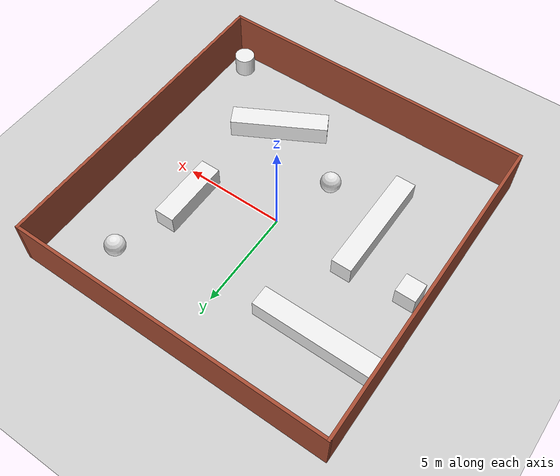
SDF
<sdf version="1.6">
 <world name="default">
  <light name="sun" type="directional">
   <pose>0 0 10 0 -0 0</pose>
   <diffuse>0.8 0.8 0.8 1</diffuse>
   <specular>0.2 0.2 0.2 1</specular>
   <attenuation>
    <range>1000</range>
    <constant>0.9</constant>
    <linear>0.01</linear>
    <quadratic>0.001</quadratic>
   </attenuation>
   <direction>-0.5 0.1 -0.9</direction>
   <spot><inner_angle>0</inner_angle><outer_angle>0</outer_angle><falloff>0</falloff></spot>
  </light>
  <model name="ground_plane">
   <static>1</static>
   <link name="link">
    <collision name="collision">
     <geometry><plane><normal>0 0 1</normal><size>100 100</size></plane></geometry>
     <surface>
      <contact><collide_bitmask>65535</collide_bitmask></contact>
      <friction><ode><mu>100</mu><mu2>50</mu2></ode></friction>
     </surface>
    </collision>
    <visual name="visual">
     <cast_shadows>0</cast_shadows>
     <geometry><plane><normal>0 0 1</normal><size>100 100</size></plane></geometry>
     <material>
      <script><uri>file://media/materials/scripts/gazebo.material</uri><name>Gazebo/Grey</name></script>
     </material>
    </visual>
   </link>
  </model>
  <gravity>0 0 -9.8</gravity>
  <magnetic_field>6e-06 2.3e-05 -4.2e-05</magnetic_field>
  <atmosphere type="adiabatic"/>
  <physics type="ode">
   <max_step_size>0.001</max_step_size>
   <real_time_factor>1</real_time_factor>
   <real_time_update_rate>1000</real_time_update_rate>
  </physics>
  <scene><ambient>0.4 0.4 0.4 1</ambient><background>0.7 0.7 0.7 1</background><shadows>1</shadows></scene>
  <spherical_coordinates>
   <surface_model>EARTH_WGS84</surface_model>
   <latitude_deg>0</latitude_deg>
   <longitude_deg>0</longitude_deg>
   <elevation>0</elevation>
   <heading_deg>0</heading_deg>
  </spherical_coordinates>
  <model name="simple">
   <link name="Wall_21">
    <collision name="Wall_21_Collision">
     <geometry><box><size>16 0.15 2.5</size></box></geometry>
     <pose>0 0 1.25 0 -0 0</pose>
    </collision>
    <visual name="Wall_21_Visual">
     <pose>0 0 1.25 0 -0 0</pose>
     <geometry><box><size>16 0.15 2.5</size></box></geometry>
     <material>
      <script><uri>file://media/materials/scripts/gazebo.material</uri><name>Gazebo/Bricks</name></script>
      <ambient>1 1 1 1</ambient>
     </material>
     <meta><layer>0</layer></meta>
    </visual>
    <pose>0 -7.925 0 0 -0 0</pose>
   </link>
   <link name="Wall_23">
    <collision name="Wall_23_Collision">
     <geometry><box><size>16 0.15 2.5</size></box></geometry>
     <pose>0 0 1.25 0 -0 0</pose>
    </collision>
    <visual name="Wall_23_Visual">
     <pose>0 0 1.25 0 -0 0</pose>
     <geometry><box><size>16 0.15 2.5</size></box></geometry>
     <material>
      <script><uri>file://media/materials/scripts/gazebo.material</uri><name>Gazebo/Bricks</name></script>
      <ambient>1 1 1 1</ambient>
     </material>
     <meta><layer>0</layer></meta>
    </visual>
    <pose>7.925 0 0 0 -0 1.5708</pose>
   </link>
   <link name="Wall_24">
    <collision name="Wall_24_Collision">
     <geometry><box><size>16 0.15 2.5</size></box></geometry>
     <pose>0 0 1.25 0 -0 0</pose>
    </collision>
    <visual name="Wall_24_Visual">
     <pose>0 0 1.25 0 -0 0</pose>
     <geometry><box><size>16 0.15 2.5</size></box></geometry>
     <material>
      <script><uri>file://media/materials/scripts/gazebo.material</uri><name>Gazebo/Bricks</name></script>
      <ambient>1 1 1 1</ambient>
     </material>
     <meta><layer>0</layer></meta>
    </visual>
    <pose>0 7.925 0 0 -0 3.14159</pose>
   </link>
   <link name="Wall_25">
    <collision name="Wall_25_Collision">
     <geometry><box><size>16 0.15 2.5</size></box></geometry>
     <pose>0 0 1.25 0 -0 0</pose>
    </collision>
    <visual name="Wall_25_Visual">
     <pose>0 0 1.25 0 -0 0</pose>
     <geometry><box><size>16 0.15 2.5</size></box></geometry>
     <material>
      <script><uri>file://media/materials/scripts/gazebo.material</uri><name>Gazebo/Bricks</name></script>
      <ambient>1 1 1 1</ambient>
     </material>
     <meta><layer>0</layer></meta>
    </visual>
    <pose>-7.925 0 0 0 -0 -1.5708</pose>
   </link>
   <static>1</static>
  </model>
  <model name="unit_box">
   <pose>-4.77413 4 0.495963 0 0.001401 8.1e-05</pose>
   <link name="link">
    <inertial>
     <mass>1</mass>
     <inertia>
      <ixx>0.166667</ixx>
      <ixy>0</ixy>
      <ixz>0</ixz>
      <iyy>0.166667</iyy>
      <iyz>0</iyz>
      <izz>0.166667</izz>
     </inertia>
    </inertial>
    <collision name="collision"><geometry><box><size>5.76556 1 1</size></box></geometry></collision>
    <visual name="visual">
     <geometry><box><size>5.76556 1 1</size></box></geometry>
     <material>
      <script><name>Gazebo/White</name><uri>file://media/materials/scripts/gazebo.material</uri></script>
     </material>
    </visual>
   </link>
  </model>
  <model name="unit_box_0">
   <pose>-3.98454 -1.99978 0.5 -0 -1e-06 1.2e-05</pose>
   <link name="link">
    <inertial>
     <mass>1</mass>
     <inertia>
      <ixx>0.166667</ixx>
      <ixy>0</ixy>
      <ixz>0</ixz>
      <iyy>0.166667</iyy>
      <iyz>0</iyz>
      <izz>0.166667</izz>
     </inertia>
    </inertial>
    <collision name="collision"><geometry><box><size>1 5.60988 1</size></box></geometry></collision>
    <visual name="visual">
     <geometry><box><size>1 5.60988 1</size></box></geometry>
     <material>
      <script><name>Gazebo/White</name><uri>file://media/materials/scripts/gazebo.material</uri></script>
     </material>
    </visual>
   </link>
  </model>
  <model name="unit_sphere">
   <pose>5 5.5 0.5 0 -0 0</pose>
   <link name="link">
    <inertial>
     <mass>1</mass>
     <inertia><ixx>0.1</ixx><ixy>0</ixy><ixz>0</ixz><iyy>0.1</iyy><iyz>0</iyz><izz>0.1</izz></inertia>
    </inertial>
    <collision name="collision"><geometry><sphere><radius>0.5</radius></sphere></geometry></collision>
    <visual name="visual">
     <geometry><sphere><radius>0.5</radius></sphere></geometry>
     <material>
      <script><name>Gazebo/White</name><uri>file://media/materials/scripts/gazebo.material</uri></script>
     </material>
    </visual>
   </link>
  </model>
  <model name="unit_box_1">
   <pose>4.00001 1.50011 0.499995 -1e-06 -6e-06 -2e-06</pose>
   <link name="link">
    <inertial>
     <mass>1</mass>
     <inertia>
      <ixx>0.166667</ixx>
      <ixy>0</ixy>
      <ixz>0</ixz>
      <iyy>0.166667</iyy>
      <iyz>0</iyz>
      <izz>0.166667</izz>
     </inertia>
    </inertial>
    <collision name="collision"><geometry><box><size>1 3.44646 1</size></box></geometry></collision>
    <visual name="visual">
     <geometry><box><size>1 3.44646 1</size></box></geometry>
     <material>
      <script><name>Gazebo/White</name><uri>file://media/materials/scripts/gazebo.material</uri></script>
     </material>
    </visual>
   </link>
  </model>
  <model name="unit_box_2">
   <pose>3.00056 -4.5 0.499996 2e-06 -4e-06 -1.07239</pose>
   <link name="link">
    <inertial>
     <mass>1</mass>
     <inertia>
      <ixx>0.166667</ixx>
      <ixy>0</ixy>
      <ixz>0</ixz>
      <iyy>0.166667</iyy>
      <iyz>0</iyz>
      <izz>0.166667</izz>
     </inertia>
    </inertial>
    <collision name="collision"><geometry><box><size>1 4.77871 1</size></box></geometry></collision>
    <visual name="visual">
     <geometry><box><size>1 4.77871 1</size></box></geometry>
     <material>
      <script><name>Gazebo/White</name><uri>file://media/materials/scripts/gazebo.material</uri></script>
     </material>
    </visual>
   </link>
  </model>
  <model name="unit_cylinder">
   <pose>7 -7 0.499997 4e-06 3e-06 -0</pose>
   <link name="link">
    <inertial>
     <mass>1</mass>
     <inertia><ixx>0.145833</ixx><ixy>0</ixy><ixz>0</ixz><iyy>0.145833</iyy><iyz>0</iyz><izz>0.125</izz></inertia>
    </inertial>
    <collision name="collision">
     <geometry><cylinder><radius>0.5</radius><length>1</length></cylinder></geometry>
    </collision>
    <visual name="visual">
     <geometry><cylinder><radius>0.5</radius><length>1</length></cylinder></geometry>
     <material>
      <script><name>Gazebo/White</name><uri>file://media/materials/scripts/gazebo.material</uri></script>
     </material>
    </visual>
   </link>
  </model>
  <model name="unit_box_3">
   <pose>-7 -5e-06 0.499995 0 -1e-05 0</pose>
   <link name="link">
    <inertial>
     <mass>1</mass>
     <inertia>
      <ixx>0.166667</ixx>
      <ixy>0</ixy>
      <ixz>0</ixz>
      <iyy>0.166667</iyy>
      <iyz>0</iyz>
      <izz>0.166667</izz>
     </inertia>
    </inertial>
    <collision name="collision"><geometry><box><size>1 1 1</size></box></geometry></collision>
    <visual name="visual">
     <geometry><box><size>1 1 1</size></box></geometry>
     <material>
      <script><name>Gazebo/White</name><uri>file://media/materials/scripts/gazebo.material</uri></script>
     </material>
    </visual>
   </link>
  </model>
  <model name="unit_sphere_0">
   <pose>-1 -3 0.5 0 -0 0</pose>
   <link name="link">
    <inertial>
     <mass>1</mass>
     <inertia><ixx>0.1</ixx><ixy>0</ixy><ixz>0</ixz><iyy>0.1</iyy><iyz>0</iyz><izz>0.1</izz></inertia>
    </inertial>
    <collision name="collision"><geometry><sphere><radius>0.5</radius></sphere></geometry></collision>
    <visual name="visual">
     <geometry><sphere><radius>0.5</radius></sphere></geometry>
     <material>
      <script><name>Gazebo/White</name><uri>file://media/materials/scripts/gazebo.material</uri></script>
     </material>
    </visual>
   </link>
  </model>
 </world>
</sdf>
